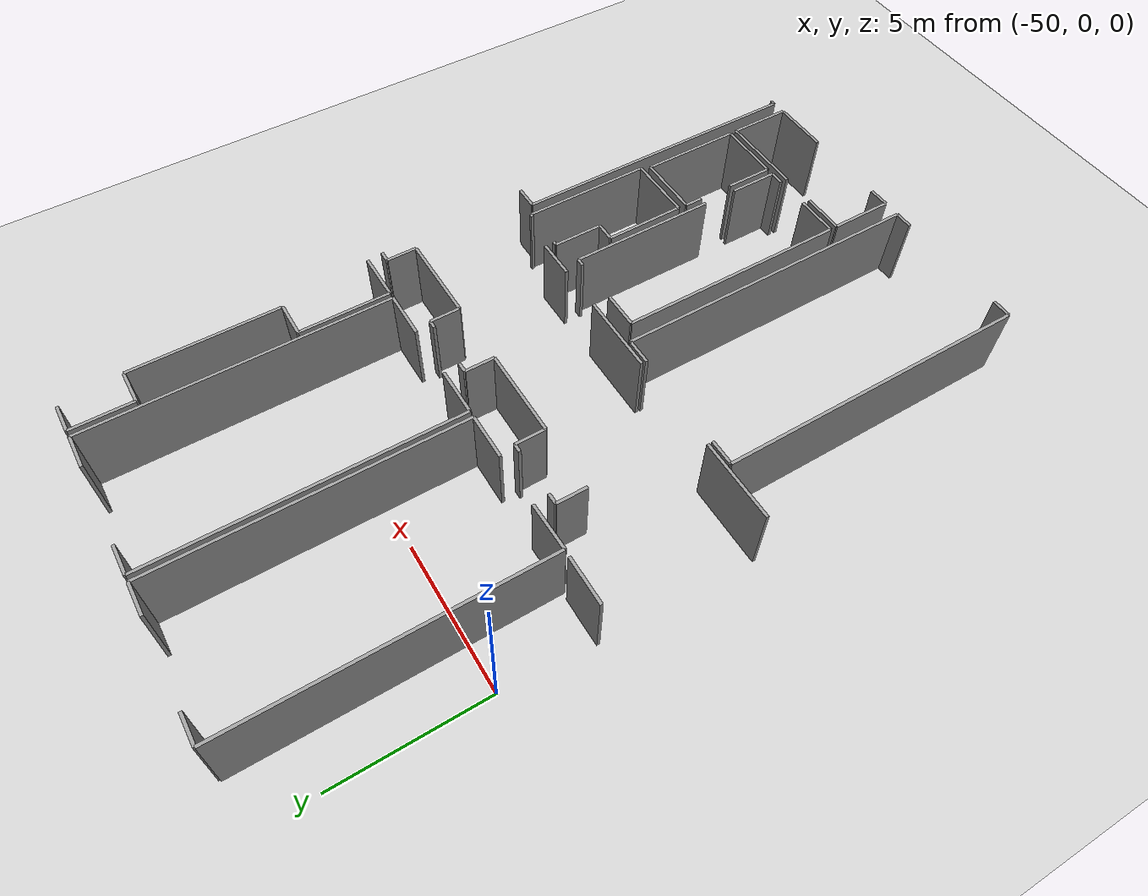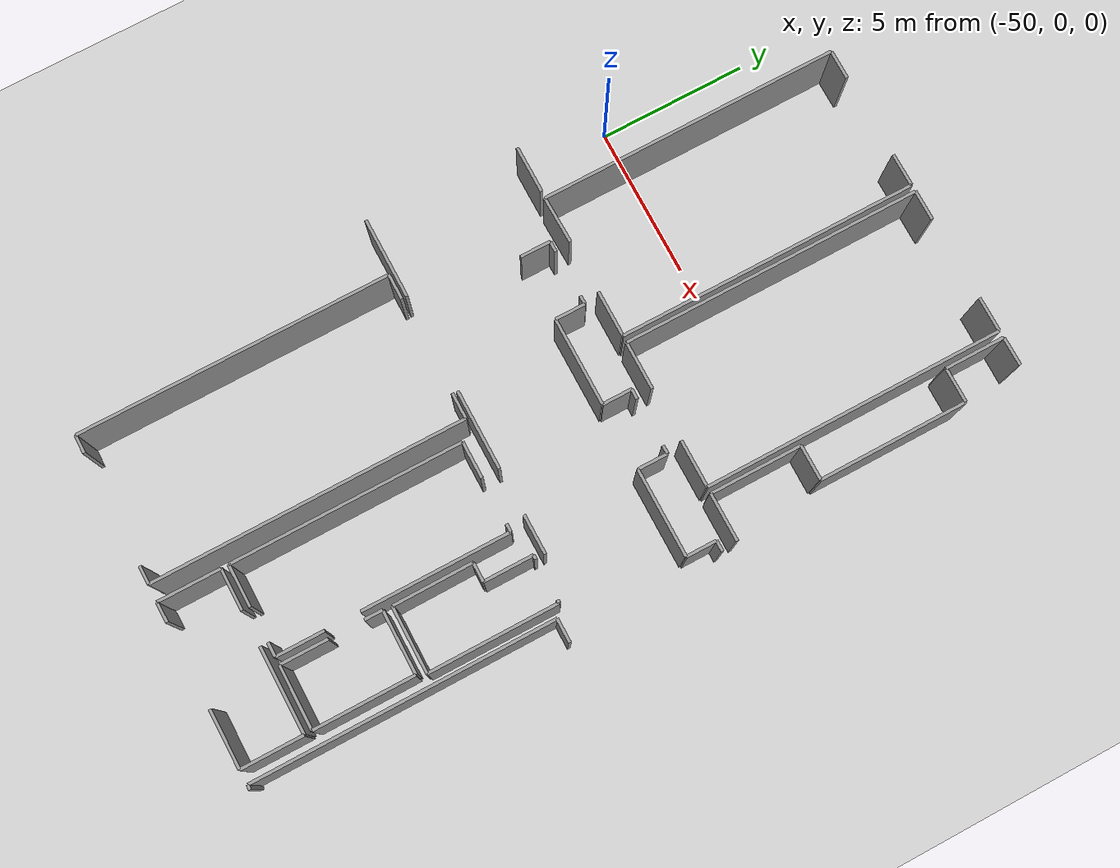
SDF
<sdf version="1.6">
 <world name="default">
  <model name="ground_plane">
   <static>1</static>
   <link name="link">
    <collision name="collision">
     <geometry><plane><normal>0 0 1</normal><size>100 100</size></plane></geometry>
     <surface><friction><ode><mu>100</mu><mu2>50</mu2></ode></friction></surface>
    </collision>
    <visual name="visual">
     <cast_shadows>0</cast_shadows>
     <geometry><plane><normal>0 0 1</normal><size>100 100</size></plane></geometry>
     <material>
      <script><uri>file://media/materials/scripts/gazebo.material</uri><name>Gazebo/Grey</name></script>
     </material>
    </visual>
   </link>
  </model>
  <model name="50055641">
   <static>1</static>
   <link name="Wall_29">
    <collision name="Wall_29_Collision">
     <geometry><box><size>1.01562797547 0.1 2.5</size></box></geometry>
     <pose>0.507813987736 0 1.25 0 0 0</pose>
    </collision>
    <visual name="Wall_29_Visual">
     <pose>0.507813987736 0 1.25 0 0 0</pose>
     <geometry><box><size>1.01562797547 0.1 2.5</size></box></geometry>
     <material>
      <script><uri>file://media/materials/scripts/gazebo.material</uri><name>Gazebo/Grey</name></script>
      <ambient>1 1 1 1</ambient>
     </material>
    </visual>
    <pose>22.1484340286 -23.2658787086 0 0 0 1.57079632679</pose>
   </link>
   <link name="Wall_30">
    <collision name="Wall_30_Collision">
     <geometry><box><size>0.365753024667 0.1 2.5</size></box></geometry>
     <pose>0.182876512334 0 1.25 0 0 0</pose>
    </collision>
    <visual name="Wall_30_Visual">
     <pose>0.182876512334 0 1.25 0 0 0</pose>
     <geometry><box><size>0.365753024667 0.1 2.5</size></box></geometry>
     <material>
      <script><uri>file://media/materials/scripts/gazebo.material</uri><name>Gazebo/Grey</name></script>
      <ambient>1 1 1 1</ambient>
     </material>
    </visual>
    <pose>22.1484340286 -22.2502507332 0 0 0 0.0</pose>
   </link>
   <link name="Wall_31">
    <collision name="Wall_31_Collision">
     <geometry><box><size>0.283868019145 0.1 2.5</size></box></geometry>
     <pose>0.141934009572 0 1.25 0 0 0</pose>
    </collision>
    <visual name="Wall_31_Visual">
     <pose>0.141934009572 0 1.25 0 0 0</pose>
     <geometry><box><size>0.283868019145 0.1 2.5</size></box></geometry>
     <material>
      <script><uri>file://media/materials/scripts/gazebo.material</uri><name>Gazebo/Grey</name></script>
      <ambient>1 1 1 1</ambient>
     </material>
    </visual>
    <pose>24.0752072516 -22.2502507332 0 0 0 0.0</pose>
   </link>
   <link name="Wall_32">
    <collision name="Wall_32_Collision">
     <geometry><box><size>1.00179004431 0.1 2.5</size></box></geometry>
     <pose>0.500895022153 0 1.25 0 0 0</pose>
    </collision>
    <visual name="Wall_32_Visual">
     <pose>0.500895022153 0 1.25 0 0 0</pose>
     <geometry><box><size>1.00179004431 0.1 2.5</size></box></geometry>
     <material>
      <script><uri>file://media/materials/scripts/gazebo.material</uri><name>Gazebo/Grey</name></script>
      <ambient>1 1 1 1</ambient>
     </material>
    </visual>
    <pose>24.3590752707 -22.2502507332 0 0 0 -1.57079632679</pose>
   </link>
   <link name="Wall_33">
    <collision name="Wall_33_Collision">
     <geometry><box><size>2.95496959464 0.1 2.5</size></box></geometry>
     <pose>1.47748479732 0 1.25 0 0 0</pose>
    </collision>
    <visual name="Wall_33_Visual">
     <pose>1.47748479732 0 1.25 0 0 0</pose>
     <geometry><box><size>2.95496959464 0.1 2.5</size></box></geometry>
     <material>
      <script><uri>file://media/materials/scripts/gazebo.material</uri><name>Gazebo/Grey</name></script>
      <ambient>1 1 1 1</ambient>
     </material>
    </visual>
    <pose>24.3590752707 -23.2520407775 0 0 0 0.0</pose>
   </link>
   <link name="Wall_34">
    <collision name="Wall_34_Collision">
     <geometry><box><size>0.984905229215 0.1 2.5</size></box></geometry>
     <pose>0.492452614607 0 1.25 0 0 0</pose>
    </collision>
    <visual name="Wall_34_Visual">
     <pose>0.492452614607 0 1.25 0 0 0</pose>
     <geometry><box><size>0.984905229215 0.1 2.5</size></box></geometry>
     <material>
      <script><uri>file://media/materials/scripts/gazebo.material</uri><name>Gazebo/Grey</name></script>
      <ambient>1 1 1 1</ambient>
     </material>
    </visual>
    <pose>27.3140448654 -23.2520407775 0 0 0 1.57079632679</pose>
   </link>
   <link name="Wall_35">
    <collision name="Wall_35_Collision">
     <geometry><box><size>0.342139674237 0.1 2.5</size></box></geometry>
     <pose>0.171069837119 0 1.25 0 0 0</pose>
    </collision>
    <visual name="Wall_35_Visual">
     <pose>0.171069837119 0 1.25 0 0 0</pose>
     <geometry><box><size>0.342139674237 0.1 2.5</size></box></geometry>
     <material>
      <script><uri>file://media/materials/scripts/gazebo.material</uri><name>Gazebo/Grey</name></script>
      <ambient>1 1 1 1</ambient>
     </material>
    </visual>
    <pose>27.3140448654 -22.2671355482 0 0 0 0.0</pose>
   </link>
   <link name="Wall_36">
    <collision name="Wall_36_Collision">
     <geometry><box><size>0.275996902335 0.1 2.5</size></box></geometry>
     <pose>0.137998451167 0 1.25 0 0 0</pose>
    </collision>
    <visual name="Wall_36_Visual">
     <pose>0.137998451167 0 1.25 0 0 0</pose>
     <geometry><box><size>0.275996902335 0.1 2.5</size></box></geometry>
     <material>
      <script><uri>file://media/materials/scripts/gazebo.material</uri><name>Gazebo/Grey</name></script>
      <ambient>1 1 1 1</ambient>
     </material>
    </visual>
    <pose>29.2467849027 -22.2671355482 0 0 0 0.0</pose>
   </link>
   <link name="Wall_37">
    <collision name="Wall_37_Collision">
     <geometry><box><size>0.99874316038 0.1 2.5</size></box></geometry>
     <pose>0.49937158019 0 1.25 0 0 0</pose>
    </collision>
    <visual name="Wall_37_Visual">
     <pose>0.49937158019 0 1.25 0 0 0</pose>
     <geometry><box><size>0.99874316038 0.1 2.5</size></box></geometry>
     <material>
      <script><uri>file://media/materials/scripts/gazebo.material</uri><name>Gazebo/Grey</name></script>
      <ambient>1 1 1 1</ambient>
     </material>
    </visual>
    <pose>29.522781805 -22.2671355482 0 0 0 -1.57079632679</pose>
   </link>
   <link name="Wall_38">
    <collision name="Wall_38_Collision">
     <geometry><box><size>2.93643438409 0.1 2.5</size></box></geometry>
     <pose>1.46821719204 0 1.25 0 0 0</pose>
    </collision>
    <visual name="Wall_38_Visual">
     <pose>1.46821719204 0 1.25 0 0 0</pose>
     <geometry><box><size>2.93643438409 0.1 2.5</size></box></geometry>
     <material>
      <script><uri>file://media/materials/scripts/gazebo.material</uri><name>Gazebo/Grey</name></script>
      <ambient>1 1 1 1</ambient>
     </material>
    </visual>
    <pose>29.522781805 -23.2658787086 0 0 0 0.0</pose>
   </link>
   <link name="Wall_39">
    <collision name="Wall_39_Collision">
     <geometry><box><size>1.01562797547 0.1 2.5</size></box></geometry>
     <pose>0.507813987736 0 1.25 0 0 0</pose>
    </collision>
    <visual name="Wall_39_Visual">
     <pose>0.507813987736 0 1.25 0 0 0</pose>
     <geometry><box><size>1.01562797547 0.1 2.5</size></box></geometry>
     <material>
      <script><uri>file://media/materials/scripts/gazebo.material</uri><name>Gazebo/Grey</name></script>
      <ambient>1 1 1 1</ambient>
     </material>
    </visual>
    <pose>32.4592161891 -23.2658787086 0 0 0 1.57079632679</pose>
   </link>
   <link name="Wall_40">
    <collision name="Wall_40_Collision">
     <geometry><box><size>0.364356536201 0.1 2.5</size></box></geometry>
     <pose>0.1821782681 0 1.25 0 0 0</pose>
    </collision>
    <visual name="Wall_40_Visual">
     <pose>0.1821782681 0 1.25 0 0 0</pose>
     <geometry><box><size>0.364356536201 0.1 2.5</size></box></geometry>
     <material>
      <script><uri>file://media/materials/scripts/gazebo.material</uri><name>Gazebo/Grey</name></script>
      <ambient>1 1 1 1</ambient>
     </material>
    </visual>
    <pose>32.4592161891 -22.2502507332 0 0 0 0.0</pose>
   </link>
   <link name="Wall_62">
    <collision name="Wall_62_Collision">
     <geometry><box><size>1.31054094885 0.1 2.5</size></box></geometry>
     <pose>0.655270474425 0 1.25 0 0 0</pose>
    </collision>
    <visual name="Wall_62_Visual">
     <pose>0.655270474425 0 1.25 0 0 0</pose>
     <geometry><box><size>1.31054094885 0.1 2.5</size></box></geometry>
     <material>
      <script><uri>file://media/materials/scripts/gazebo.material</uri><name>Gazebo/Grey</name></script>
      <ambient>1 1 1 1</ambient>
     </material>
    </visual>
    <pose>30.4442102858 -26.8581548579 0 0 0 3.14159265359</pose>
   </link>
   <link name="Wall_63">
    <collision name="Wall_63_Collision">
     <geometry><box><size>2.65447066739 0.1 2.5</size></box></geometry>
     <pose>1.3272353337 0 1.25 0 0 0</pose>
    </collision>
    <visual name="Wall_63_Visual">
     <pose>1.3272353337 0 1.25 0 0 0</pose>
     <geometry><box><size>2.65447066739 0.1 2.5</size></box></geometry>
     <material>
      <script><uri>file://media/materials/scripts/gazebo.material</uri><name>Gazebo/Grey</name></script>
      <ambient>1 1 1 1</ambient>
     </material>
    </visual>
    <pose>27.5727760921 -26.8581548579 0 0 0 3.14159265359</pose>
   </link>
   <link name="Wall_64">
    <collision name="Wall_64_Collision">
     <geometry><box><size>2.7041094847 0.1 2.5</size></box></geometry>
     <pose>1.35205474235 0 1.25 0 0 0</pose>
    </collision>
    <visual name="Wall_64_Visual">
     <pose>1.35205474235 0 1.25 0 0 0</pose>
     <geometry><box><size>2.7041094847 0.1 2.5</size></box></geometry>
     <material>
      <script><uri>file://media/materials/scripts/gazebo.material</uri><name>Gazebo/Grey</name></script>
      <ambient>1 1 1 1</ambient>
     </material>
    </visual>
    <pose>21.6201805279 -26.8581548579 0 0 0 3.14159265359</pose>
   </link>
   <link name="Wall_79">
    <collision name="Wall_79_Collision">
     <geometry><box><size>1.56965303609 0.1 2.5</size></box></geometry>
     <pose>0.784826518046 0 1.25 0 0 0</pose>
    </collision>
    <visual name="Wall_79_Visual">
     <pose>0.784826518046 0 1.25 0 0 0</pose>
     <geometry><box><size>1.56965303609 0.1 2.5</size></box></geometry>
     <material>
      <script><uri>file://media/materials/scripts/gazebo.material</uri><name>Gazebo/Grey</name></script>
      <ambient>1 1 1 1</ambient>
     </material>
    </visual>
    <pose>20.619786972 -21.7329152332 0 0 0 3.14159265359</pose>
   </link>
   <link name="Wall_81">
    <collision name="Wall_81_Collision">
     <geometry><box><size>10.0346583047 0.1 2.5</size></box></geometry>
     <pose>5.01732915233 0 1.25 0 0 0</pose>
    </collision>
    <visual name="Wall_81_Visual">
     <pose>5.01732915233 0 1.25 0 0 0</pose>
     <geometry><box><size>10.0346583047 0.1 2.5</size></box></geometry>
     <material>
      <script><uri>file://media/materials/scripts/gazebo.material</uri><name>Gazebo/Grey</name></script>
      <ambient>1 1 1 1</ambient>
     </material>
    </visual>
    <pose>20.8615064302 -21.7495461412 0 0 0 1.57079632679</pose>
   </link>
   <link name="Wall_82">
    <collision name="Wall_82_Collision">
     <geometry><box><size>0.979827089337 0.1 2.5</size></box></geometry>
     <pose>0.489913544669 0 1.25 0 0 0</pose>
    </collision>
    <visual name="Wall_82_Visual">
     <pose>0.489913544669 0 1.25 0 0 0</pose>
     <geometry><box><size>0.979827089337 0.1 2.5</size></box></geometry>
     <material>
      <script><uri>file://media/materials/scripts/gazebo.material</uri><name>Gazebo/Grey</name></script>
      <ambient>1 1 1 1</ambient>
     </material>
    </visual>
    <pose>20.8615064302 -11.7148878366 0 0 0 0.0</pose>
   </link>
   <link name="Wall_83">
    <collision name="Wall_83_Collision">
     <geometry><box><size>1.09776688799 0.1 2.5</size></box></geometry>
     <pose>0.548883443994 0 1.25 0 0 0</pose>
    </collision>
    <visual name="Wall_83_Visual">
     <pose>0.548883443994 0 1.25 0 0 0</pose>
     <geometry><box><size>1.09776688799 0.1 2.5</size></box></geometry>
     <material>
      <script><uri>file://media/materials/scripts/gazebo.material</uri><name>Gazebo/Grey</name></script>
      <ambient>1 1 1 1</ambient>
     </material>
    </visual>
    <pose>24.6623671749 -11.7148878366 0 0 0 0.0</pose>
   </link>
   <link name="Wall_84">
    <collision name="Wall_84_Collision">
     <geometry><box><size>10.0001269535 0.1 2.5</size></box></geometry>
     <pose>5.00006347675 0 1.25 0 0 0</pose>
    </collision>
    <visual name="Wall_84_Visual">
     <pose>5.00006347675 0 1.25 0 0 0</pose>
     <geometry><box><size>10.0001269535 0.1 2.5</size></box></geometry>
     <material>
      <script><uri>file://media/materials/scripts/gazebo.material</uri><name>Gazebo/Grey</name></script>
      <ambient>1 1 1 1</ambient>
     </material>
    </visual>
    <pose>25.7601340629 -11.7148878366 0 0 0 -1.57079632679</pose>
   </link>
   <link name="Wall_85">
    <collision name="Wall_85_Collision">
     <geometry><box><size>1.54223108076 0.1 2.5</size></box></geometry>
     <pose>0.771115540378 0 1.25 0 0 0</pose>
    </collision>
    <visual name="Wall_85_Visual">
     <pose>0.771115540378 0 1.25 0 0 0</pose>
     <geometry><box><size>1.54223108076 0.1 2.5</size></box></geometry>
     <material>
      <script><uri>file://media/materials/scripts/gazebo.material</uri><name>Gazebo/Grey</name></script>
      <ambient>1 1 1 1</ambient>
     </material>
    </visual>
    <pose>25.7601340629 -21.7150147901 0 0 0 3.14159265359</pose>
   </link>
   <link name="Wall_86">
    <collision name="Wall_86_Collision">
     <geometry><box><size>1.57840973855 0.1 2.5</size></box></geometry>
     <pose>0.789204869274 0 1.25 0 0 0</pose>
    </collision>
    <visual name="Wall_86_Visual">
     <pose>0.789204869274 0 1.25 0 0 0</pose>
     <geometry><box><size>1.57840973855 0.1 2.5</size></box></geometry>
     <material>
      <script><uri>file://media/materials/scripts/gazebo.material</uri><name>Gazebo/Grey</name></script>
      <ambient>1 1 1 1</ambient>
     </material>
    </visual>
    <pose>22.4395383971 -21.7150147901 0 0 0 -3.11971360314</pose>
   </link>
   <link name="Wall_87">
    <collision name="Wall_87_Collision">
     <geometry><box><size>1.58234838579 0.1 2.5</size></box></geometry>
     <pose>0.791174192893 0 1.25 0 0 0</pose>
    </collision>
    <visual name="Wall_87_Visual">
     <pose>0.791174192893 0 1.25 0 0 0</pose>
     <geometry><box><size>1.58234838579 0.1 2.5</size></box></geometry>
     <material>
      <script><uri>file://media/materials/scripts/gazebo.material</uri><name>Gazebo/Grey</name></script>
      <ambient>1 1 1 1</ambient>
     </material>
    </visual>
    <pose>30.9487234826 -21.7194581625 0 0 0 3.14159265359</pose>
   </link>
   <link name="Wall_88">
    <collision name="Wall_88_Collision">
     <geometry><box><size>1.6026609453 0.1 2.5</size></box></geometry>
     <pose>0.801330472648 0 1.25 0 0 0</pose>
    </collision>
    <visual name="Wall_88_Visual">
     <pose>0.801330472648 0 1.25 0 0 0</pose>
     <geometry><box><size>1.6026609453 0.1 2.5</size></box></geometry>
     <material>
      <script><uri>file://media/materials/scripts/gazebo.material</uri><name>Gazebo/Grey</name></script>
      <ambient>1 1 1 1</ambient>
     </material>
    </visual>
    <pose>27.5894070002 -21.7194581625 0 0 0 3.14159265359</pose>
   </link>
   <link name="Wall_89">
    <collision name="Wall_89_Collision">
     <geometry><box><size>10.0086328378 0.1 2.5</size></box></geometry>
     <pose>5.0043164189 0 1.25 0 0 0</pose>
    </collision>
    <visual name="Wall_89_Visual">
     <pose>5.0043164189 0 1.25 0 0 0</pose>
     <geometry><box><size>10.0086328378 0.1 2.5</size></box></geometry>
     <material>
      <script><uri>file://media/materials/scripts/gazebo.material</uri><name>Gazebo/Grey</name></script>
      <ambient>1 1 1 1</ambient>
     </material>
    </visual>
    <pose>25.9867460549 -21.7194581625 0 0 0 1.57079632679</pose>
   </link>
   <link name="Wall_90">
    <collision name="Wall_90_Collision">
     <geometry><box><size>1.00851857964 0.1 2.5</size></box></geometry>
     <pose>0.504259289822 0 1.25 0 0 0</pose>
    </collision>
    <visual name="Wall_90_Visual">
     <pose>0.504259289822 0 1.25 0 0 0</pose>
     <geometry><box><size>1.00851857964 0.1 2.5</size></box></geometry>
     <material>
      <script><uri>file://media/materials/scripts/gazebo.material</uri><name>Gazebo/Grey</name></script>
      <ambient>1 1 1 1</ambient>
     </material>
    </visual>
    <pose>25.9867460549 -11.7108253247 0 0 0 0.0</pose>
   </link>
   <link name="Wall_91">
    <collision name="Wall_91_Collision">
     <geometry><box><size>1.14880219376 0.1 2.5</size></box></geometry>
     <pose>0.574401096878 0 1.25 0 0 0</pose>
    </collision>
    <visual name="Wall_91_Visual">
     <pose>0.574401096878 0 1.25 0 0 0</pose>
     <geometry><box><size>1.14880219376 0.1 2.5</size></box></geometry>
     <material>
      <script><uri>file://media/materials/scripts/gazebo.material</uri><name>Gazebo/Grey</name></script>
      <ambient>1 1 1 1</ambient>
     </material>
    </visual>
    <pose>29.7914154045 -11.7108253247 0 0 0 0.0</pose>
   </link>
   <link name="Wall_92">
    <collision name="Wall_92_Collision">
     <geometry><box><size>10.0086364522 0.1 2.5</size></box></geometry>
     <pose>5.00431822609 0 1.25 0 0 0</pose>
    </collision>
    <visual name="Wall_92_Visual">
     <pose>5.00431822609 0 1.25 0 0 0</pose>
     <geometry><box><size>10.0086364522 0.1 2.5</size></box></geometry>
     <material>
      <script><uri>file://media/materials/scripts/gazebo.material</uri><name>Gazebo/Grey</name></script>
      <ambient>1 1 1 1</ambient>
     </material>
    </visual>
    <pose>30.9402175983 -11.7108253247 0 0 0 -1.56994647224</pose>
   </link>
   <link name="Wall_93">
    <collision name="Wall_93_Collision">
     <geometry><box><size>3.05259683378 0.1 2.5</size></box></geometry>
     <pose>1.52629841689 0 1.25 0 0 0</pose>
    </collision>
    <visual name="Wall_93_Visual">
     <pose>1.52629841689 0 1.25 0 0 0</pose>
     <geometry><box><size>3.05259683378 0.1 2.5</size></box></geometry>
     <material>
      <script><uri>file://media/materials/scripts/gazebo.material</uri><name>Gazebo/Grey</name></script>
      <ambient>1 1 1 1</ambient>
     </material>
    </visual>
    <pose>31.1672104508 -21.7236476279 0 0 0 1.57079632679</pose>
   </link>
   <link name="Wall_94">
    <collision name="Wall_94_Collision">
     <geometry><box><size>1.17114600922 0.1 2.5</size></box></geometry>
     <pose>0.585573004608 0 1.25 0 0 0</pose>
    </collision>
    <visual name="Wall_94_Visual">
     <pose>0.585573004608 0 1.25 0 0 0</pose>
     <geometry><box><size>1.17114600922 0.1 2.5</size></box></geometry>
     <material>
      <script><uri>file://media/materials/scripts/gazebo.material</uri><name>Gazebo/Grey</name></script>
      <ambient>1 1 1 1</ambient>
     </material>
    </visual>
    <pose>31.1672104508 -18.6710507941 0 0 0 0.0</pose>
   </link>
   <link name="Wall_95">
    <collision name="Wall_95_Collision">
     <geometry><box><size>4.96832510251 0.1 2.5</size></box></geometry>
     <pose>2.48416255126 0 1.25 0 0 0</pose>
    </collision>
    <visual name="Wall_95_Visual">
     <pose>2.48416255126 0 1.25 0 0 0</pose>
     <geometry><box><size>4.96832510251 0.1 2.5</size></box></geometry>
     <material>
      <script><uri>file://media/materials/scripts/gazebo.material</uri><name>Gazebo/Grey</name></script>
      <ambient>1 1 1 1</ambient>
     </material>
    </visual>
    <pose>32.33835646 -18.6710507941 0 0 0 1.57079632679</pose>
   </link>
   <link name="Wall_96">
    <collision name="Wall_96_Collision">
     <geometry><box><size>1.1594662875 0.1 2.5</size></box></geometry>
     <pose>0.579733143749 0 1.25 0 0 0</pose>
    </collision>
    <visual name="Wall_96_Visual">
     <pose>0.579733143749 0 1.25 0 0 0</pose>
     <geometry><box><size>1.1594662875 0.1 2.5</size></box></geometry>
     <material>
      <script><uri>file://media/materials/scripts/gazebo.material</uri><name>Gazebo/Grey</name></script>
      <ambient>1 1 1 1</ambient>
     </material>
    </visual>
    <pose>32.33835646 -13.7027256916 0 0 0 3.14159265359</pose>
   </link>
   <link name="Wall_97">
    <collision name="Wall_97_Collision">
     <geometry><box><size>2.00345313512 0.1 2.5</size></box></geometry>
     <pose>1.00172656756 0 1.25 0 0 0</pose>
    </collision>
    <visual name="Wall_97_Visual">
     <pose>1.00172656756 0 1.25 0 0 0</pose>
     <geometry><box><size>2.00345313512 0.1 2.5</size></box></geometry>
     <material>
      <script><uri>file://media/materials/scripts/gazebo.material</uri><name>Gazebo/Grey</name></script>
      <ambient>1 1 1 1</ambient>
     </material>
    </visual>
    <pose>31.1788901725 -13.7027256916 0 0 0 1.57079632679</pose>
   </link>
   <link name="Wall_98">
    <collision name="Wall_98_Collision">
     <geometry><box><size>0.959895390319 0.1 2.5</size></box></geometry>
     <pose>0.479947695159 0 1.25 0 0 0</pose>
    </collision>
    <visual name="Wall_98_Visual">
     <pose>0.479947695159 0 1.25 0 0 0</pose>
     <geometry><box><size>0.959895390319 0.1 2.5</size></box></geometry>
     <material>
      <script><uri>file://media/materials/scripts/gazebo.material</uri><name>Gazebo/Grey</name></script>
      <ambient>1 1 1 1</ambient>
     </material>
    </visual>
    <pose>31.1788901725 -11.6992725565 0 0 0 0.0</pose>
   </link>
   <link name="Wall_110">
    <collision name="Wall_110_Collision">
     <geometry><box><size>1.59618947236 0.1 2.5</size></box></geometry>
     <pose>0.798094736179 0 1.25 0 0 0</pose>
    </collision>
    <visual name="Wall_110_Visual">
     <pose>0.798094736179 0 1.25 0 0 0</pose>
     <geometry><box><size>1.59618947236 0.1 2.5</size></box></geometry>
     <material>
      <script><uri>file://media/materials/scripts/gazebo.material</uri><name>Gazebo/Grey</name></script>
      <ambient>1 1 1 1</ambient>
     </material>
    </visual>
    <pose>32.7633967678 -21.7204737905 0 0 0 -3.1396042684</pose>
   </link>
   <link name="Wall_141">
    <collision name="Wall_141_Collision">
     <geometry><box><size>9.99860351153 0.1 2.5</size></box></geometry>
     <pose>4.99930175577 0 1.25 0 0 0</pose>
    </collision>
    <visual name="Wall_141_Visual">
     <pose>4.99930175577 0 1.25 0 0 0</pose>
     <geometry><box><size>9.99860351153 0.1 2.5</size></box></geometry>
     <material>
      <script><uri>file://media/materials/scripts/gazebo.material</uri><name>Gazebo/Grey</name></script>
      <ambient>1 1 1 1</ambient>
     </material>
    </visual>
    <pose>32.2657390598 -37.4378245249 0 0 0 1.57079632679</pose>
   </link>
   <link name="Wall_142">
    <collision name="Wall_142_Collision">
     <geometry><box><size>0.780764006145 0.1 2.5</size></box></geometry>
     <pose>0.390382003072 0 1.25 0 0 0</pose>
    </collision>
    <visual name="Wall_142_Visual">
     <pose>0.390382003072 0 1.25 0 0 0</pose>
     <geometry><box><size>0.780764006145 0.1 2.5</size></box></geometry>
     <material>
      <script><uri>file://media/materials/scripts/gazebo.material</uri><name>Gazebo/Grey</name></script>
      <ambient>1 1 1 1</ambient>
     </material>
    </visual>
    <pose>32.2657390598 -27.4392210133 0 0 0 0.0</pose>
   </link>
   <link name="Wall_146">
    <collision name="Wall_146_Collision">
     <geometry><box><size>0.162753095704 0.1 2.5</size></box></geometry>
     <pose>0.0813765478522 0 1.25 0 0 0</pose>
    </collision>
    <visual name="Wall_146_Visual">
     <pose>0.0813765478522 0 1.25 0 0 0</pose>
     <geometry><box><size>0.162753095704 0.1 2.5</size></box></geometry>
     <material>
      <script><uri>file://media/materials/scripts/gazebo.material</uri><name>Gazebo/Grey</name></script>
      <ambient>1 1 1 1</ambient>
     </material>
    </visual>
    <pose>32.4278586754 -37.45217027 0 0 0 3.05333389172</pose>
   </link>
   <link name="Wall_147">
    <collision name="Wall_147_Collision">
     <geometry><box><size>2.20657873021 0.1 2.5</size></box></geometry>
     <pose>1.10328936511 0 1.25 0 0 0</pose>
    </collision>
    <visual name="Wall_147_Visual">
     <pose>1.10328936511 0 1.25 0 0 0</pose>
     <geometry><box><size>2.20657873021 0.1 2.5</size></box></geometry>
     <material>
      <script><uri>file://media/materials/scripts/gazebo.material</uri><name>Gazebo/Grey</name></script>
      <ambient>1 1 1 1</ambient>
     </material>
    </visual>
    <pose>29.6857900951 -31.4895453795 0 0 0 0.0</pose>
   </link>
   <link name="Wall_148">
    <collision name="Wall_148_Collision">
     <geometry><box><size>4.3188310122 0.1 2.5</size></box></geometry>
     <pose>2.1594155061 0 1.25 0 0 0</pose>
    </collision>
    <visual name="Wall_148_Visual">
     <pose>2.1594155061 0 1.25 0 0 0</pose>
     <geometry><box><size>4.3188310122 0.1 2.5</size></box></geometry>
     <material>
      <script><uri>file://media/materials/scripts/gazebo.material</uri><name>Gazebo/Grey</name></script>
      <ambient>1 1 1 1</ambient>
     </material>
    </visual>
    <pose>31.8923688253 -31.4895453795 0 0 0 1.57079632679</pose>
   </link>
   <link name="Wall_149">
    <collision name="Wall_149_Collision">
     <geometry><box><size>0.101689751044 0.1 2.5</size></box></geometry>
     <pose>0.0508448755221 0 1.25 0 0 0</pose>
    </collision>
    <visual name="Wall_149_Visual">
     <pose>0.0508448755221 0 1.25 0 0 0</pose>
     <geometry><box><size>0.101689751044 0.1 2.5</size></box></geometry>
     <material>
      <script><uri>file://media/materials/scripts/gazebo.material</uri><name>Gazebo/Grey</name></script>
      <ambient>1 1 1 1</ambient>
     </material>
    </visual>
    <pose>31.8923688253 -27.1707143673 0 0 0 3.14159265359</pose>
   </link>
   <link name="Wall_150">
    <collision name="Wall_150_Collision">
     <geometry><box><size>0.141934009572 0.1 2.5</size></box></geometry>
     <pose>0.0709670047861 0 1.25 0 0 0</pose>
    </collision>
    <visual name="Wall_150_Visual">
     <pose>0.0709670047861 0 1.25 0 0 0</pose>
     <geometry><box><size>0.141934009572 0.1 2.5</size></box></geometry>
     <material>
      <script><uri>file://media/materials/scripts/gazebo.material</uri><name>Gazebo/Grey</name></script>
      <ambient>1 1 1 1</ambient>
     </material>
    </visual>
    <pose>30.4525892166 -27.1707143673 0 0 0 3.14159265359</pose>
   </link>
   <link name="Wall_151">
    <collision name="Wall_151_Collision">
     <geometry><box><size>1.65737790247 0.1 2.5</size></box></geometry>
     <pose>0.828688951237 0 1.25 0 0 0</pose>
    </collision>
    <visual name="Wall_151_Visual">
     <pose>0.828688951237 0 1.25 0 0 0</pose>
     <geometry><box><size>1.65737790247 0.1 2.5</size></box></geometry>
     <material>
      <script><uri>file://media/materials/scripts/gazebo.material</uri><name>Gazebo/Grey</name></script>
      <ambient>1 1 1 1</ambient>
     </material>
    </visual>
    <pose>30.310655207 -27.1707143673 0 0 0 -1.57079632679</pose>
   </link>
   <link name="Wall_152">
    <collision name="Wall_152_Collision">
     <geometry><box><size>0.64263860148 0.1 2.5</size></box></geometry>
     <pose>0.32131930074 0 1.25 0 0 0</pose>
    </collision>
    <visual name="Wall_152_Visual">
     <pose>0.32131930074 0 1.25 0 0 0</pose>
     <geometry><box><size>0.64263860148 0.1 2.5</size></box></geometry>
     <material>
      <script><uri>file://media/materials/scripts/gazebo.material</uri><name>Gazebo/Grey</name></script>
      <ambient>1 1 1 1</ambient>
     </material>
    </visual>
    <pose>30.310655207 -28.8280922698 0 0 0 3.14159265359</pose>
   </link>
   <link name="Wall_153">
    <collision name="Wall_153_Collision">
     <geometry><box><size>2.66151245577 0.1 2.5</size></box></geometry>
     <pose>1.33075622788 0 1.25 0 0 0</pose>
    </collision>
    <visual name="Wall_153_Visual">
     <pose>1.33075622788 0 1.25 0 0 0</pose>
     <geometry><box><size>2.66151245577 0.1 2.5</size></box></geometry>
     <material>
      <script><uri>file://media/materials/scripts/gazebo.material</uri><name>Gazebo/Grey</name></script>
      <ambient>1 1 1 1</ambient>
     </material>
    </visual>
    <pose>29.6680166055 -28.8280922698 0 0 0 -1.5641183112</pose>
   </link>
   <link name="Wall_154">
    <collision name="Wall_154_Collision">
     <geometry><box><size>7.70442686844 0.1 2.5</size></box></geometry>
     <pose>3.85221343422 0 1.25 0 0 0</pose>
    </collision>
    <visual name="Wall_154_Visual">
     <pose>3.85221343422 0 1.25 0 0 0</pose>
     <geometry><box><size>7.70442686844 0.1 2.5</size></box></geometry>
     <material>
      <script><uri>file://media/materials/scripts/gazebo.material</uri><name>Gazebo/Grey</name></script>
      <ambient>1 1 1 1</ambient>
     </material>
    </visual>
    <pose>26.354403382 -35.1442826493 0 0 0 1.57079632679</pose>
   </link>
   <link name="Wall_155">
    <collision name="Wall_155_Collision">
     <geometry><box><size>1.22789422235 0.1 2.5</size></box></geometry>
     <pose>0.613947111173 0 1.25 0 0 0</pose>
    </collision>
    <visual name="Wall_155_Visual">
     <pose>0.613947111173 0 1.25 0 0 0</pose>
     <geometry><box><size>1.22789422235 0.1 2.5</size></box></geometry>
     <material>
      <script><uri>file://media/materials/scripts/gazebo.material</uri><name>Gazebo/Grey</name></script>
      <ambient>1 1 1 1</ambient>
     </material>
    </visual>
    <pose>26.354403382 -27.4398557808 0 0 0 0.0</pose>
   </link>
   <link name="Wall_156">
    <collision name="Wall_156_Collision">
     <geometry><box><size>0.263428506138 0.1 2.5</size></box></geometry>
     <pose>0.131714253069 0 1.25 0 0 0</pose>
    </collision>
    <visual name="Wall_156_Visual">
     <pose>0.131714253069 0 1.25 0 0 0</pose>
     <geometry><box><size>0.263428506138 0.1 2.5</size></box></geometry>
     <material>
      <script><uri>file://media/materials/scripts/gazebo.material</uri><name>Gazebo/Grey</name></script>
      <ambient>1 1 1 1</ambient>
     </material>
    </visual>
    <pose>29.130114639 -27.4398557808 0 0 0 0.0</pose>
   </link>
   <link name="Wall_157">
    <collision name="Wall_157_Collision">
     <geometry><box><size>4.9316355419 0.1 2.5</size></box></geometry>
     <pose>2.46581777095 0 1.25 0 0 0</pose>
    </collision>
    <visual name="Wall_157_Visual">
     <pose>2.46581777095 0 1.25 0 0 0</pose>
     <geometry><box><size>4.9316355419 0.1 2.5</size></box></geometry>
     <material>
      <script><uri>file://media/materials/scripts/gazebo.material</uri><name>Gazebo/Grey</name></script>
      <ambient>1 1 1 1</ambient>
     </material>
    </visual>
    <pose>29.3935431451 -27.4398557808 0 0 0 -1.57079632679</pose>
   </link>
   <link name="Wall_158">
    <collision name="Wall_158_Collision">
     <geometry><box><size>1.60304180579 0.1 2.5</size></box></geometry>
     <pose>0.801520902893 0 1.25 0 0 0</pose>
    </collision>
    <visual name="Wall_158_Visual">
     <pose>0.801520902893 0 1.25 0 0 0</pose>
     <geometry><box><size>1.60304180579 0.1 2.5</size></box></geometry>
     <material>
      <script><uri>file://media/materials/scripts/gazebo.material</uri><name>Gazebo/Grey</name></script>
      <ambient>1 1 1 1</ambient>
     </material>
    </visual>
    <pose>29.3935431451 -33.5373052851 0 0 0 -1.57079632679</pose>
   </link>
   <link name="Wall_159">
    <collision name="Wall_159_Collision">
     <geometry><box><size>0.466808008227 0.1 2.5</size></box></geometry>
     <pose>0.233404004113 0 1.25 0 0 0</pose>
    </collision>
    <visual name="Wall_159_Visual">
     <pose>0.233404004113 0 1.25 0 0 0</pose>
     <geometry><box><size>0.466808008227 0.1 2.5</size></box></geometry>
     <material>
      <script><uri>file://media/materials/scripts/gazebo.material</uri><name>Gazebo/Grey</name></script>
      <ambient>1 1 1 1</ambient>
     </material>
    </visual>
    <pose>29.3935431451 -35.1403470909 0 0 0 3.14159265359</pose>
   </link>
   <link name="Wall_160">
    <collision name="Wall_160_Collision">
     <geometry><box><size>1.41452133771 0.1 2.5</size></box></geometry>
     <pose>0.707260668856 0 1.25 0 0 0</pose>
    </collision>
    <visual name="Wall_160_Visual">
     <pose>0.707260668856 0 1.25 0 0 0</pose>
     <geometry><box><size>1.41452133771 0.1 2.5</size></box></geometry>
     <material>
      <script><uri>file://media/materials/scripts/gazebo.material</uri><name>Gazebo/Grey</name></script>
      <ambient>1 1 1 1</ambient>
     </material>
    </visual>
    <pose>27.7689192449 -35.1403470909 0 0 0 -3.13881039547</pose>
   </link>
   <link name="Wall_161">
    <collision name="Wall_161_Collision">
     <geometry><box><size>1.58234838579 0.1 2.5</size></box></geometry>
     <pose>0.791174192893 0 1.25 0 0 0</pose>
    </collision>
    <visual name="Wall_161_Visual">
     <pose>0.791174192893 0 1.25 0 0 0</pose>
     <geometry><box><size>1.58234838579 0.1 2.5</size></box></geometry>
     <material>
      <script><uri>file://media/materials/scripts/gazebo.material</uri><name>Gazebo/Grey</name></script>
      <ambient>1 1 1 1</ambient>
     </material>
    </visual>
    <pose>29.6567177443 -35.1333646485 0 0 0 1.57079632679</pose>
   </link>
   <link name="Wall_162">
    <collision name="Wall_162_Collision">
     <geometry><box><size>0.59833183105 0.1 2.5</size></box></geometry>
     <pose>0.299165915525 0 1.25 0 0 0</pose>
    </collision>
    <visual name="Wall_162_Visual">
     <pose>0.299165915525 0 1.25 0 0 0</pose>
     <geometry><box><size>0.59833183105 0.1 2.5</size></box></geometry>
     <material>
      <script><uri>file://media/materials/scripts/gazebo.material</uri><name>Gazebo/Grey</name></script>
      <ambient>1 1 1 1</ambient>
     </material>
    </visual>
    <pose>29.6567177443 -32.3848214399 0 0 0 1.57079632679</pose>
   </link>
   <link name="Wall_163">
    <collision name="Wall_163_Collision">
     <geometry><box><size>2.11339486346 0.1 2.5</size></box></geometry>
     <pose>1.05669743173 0 1.25 0 0 0</pose>
    </collision>
    <visual name="Wall_163_Visual">
     <pose>1.05669743173 0 1.25 0 0 0</pose>
     <geometry><box><size>2.11339486346 0.1 2.5</size></box></geometry>
     <material>
      <script><uri>file://media/materials/scripts/gazebo.material</uri><name>Gazebo/Grey</name></script>
      <ambient>1 1 1 1</ambient>
     </material>
    </visual>
    <pose>29.6567177443 -31.7864896089 0 0 0 0.0</pose>
   </link>
   <link name="Wall_164">
    <collision name="Wall_164_Collision">
     <geometry><box><size>3.36134773832 0.1 2.5</size></box></geometry>
     <pose>1.68067386916 0 1.25 0 0 0</pose>
    </collision>
    <visual name="Wall_164_Visual">
     <pose>1.68067386916 0 1.25 0 0 0</pose>
     <geometry><box><size>3.36134773832 0.1 2.5</size></box></geometry>
     <material>
      <script><uri>file://media/materials/scripts/gazebo.material</uri><name>Gazebo/Grey</name></script>
      <ambient>1 1 1 1</ambient>
     </material>
    </visual>
    <pose>31.7701126078 -31.7864896089 0 0 0 -1.57079632679</pose>
   </link>
   <link name="Wall_165">
    <collision name="Wall_165_Collision">
     <geometry><box><size>2.11344441798 0.1 2.5</size></box></geometry>
     <pose>1.05672220899 0 1.25 0 0 0</pose>
    </collision>
    <visual name="Wall_165_Visual">
     <pose>1.05672220899 0 1.25 0 0 0</pose>
     <geometry><box><size>2.11344441798 0.1 2.5</size></box></geometry>
     <material>
      <script><uri>file://media/materials/scripts/gazebo.material</uri><name>Gazebo/Grey</name></script>
      <ambient>1 1 1 1</ambient>
     </material>
    </visual>
    <pose>31.7701126078 -35.1478373472 0 0 0 3.1347446799</pose>
   </link>
   <link name="Wall_166">
    <collision name="Wall_166_Collision">
     <geometry><box><size>2.07657834935 0.1 2.5</size></box></geometry>
     <pose>1.03828917468 0 1.25 0 0 0</pose>
    </collision>
    <visual name="Wall_166_Visual">
     <pose>1.03828917468 0 1.25 0 0 0</pose>
     <geometry><box><size>2.07657834935 0.1 2.5</size></box></geometry>
     <material>
      <script><uri>file://media/materials/scripts/gazebo.material</uri><name>Gazebo/Grey</name></script>
      <ambient>1 1 1 1</ambient>
     </material>
    </visual>
    <pose>26.3578311265 -37.4693089921 0 0 0 1.57079632679</pose>
   </link>
   <link name="Wall_167">
    <collision name="Wall_167_Collision">
     <geometry><box><size>1.38861734946 0.1 2.5</size></box></geometry>
     <pose>0.694308674732 0 1.25 0 0 0</pose>
    </collision>
    <visual name="Wall_167_Visual">
     <pose>0.694308674732 0 1.25 0 0 0</pose>
     <geometry><box><size>1.38861734946 0.1 2.5</size></box></geometry>
     <material>
      <script><uri>file://media/materials/scripts/gazebo.material</uri><name>Gazebo/Grey</name></script>
      <ambient>1 1 1 1</ambient>
     </material>
    </visual>
    <pose>26.3578311265 -35.3927306428 0 0 0 0.0</pose>
   </link>
   <link name="Wall_168">
    <collision name="Wall_168_Collision">
     <geometry><box><size>2.8654673793 0.1 2.5</size></box></geometry>
     <pose>1.43273368965 0 1.25 0 0 0</pose>
    </collision>
    <visual name="Wall_168_Visual">
     <pose>1.43273368965 0 1.25 0 0 0</pose>
     <geometry><box><size>2.8654673793 0.1 2.5</size></box></geometry>
     <material>
      <script><uri>file://media/materials/scripts/gazebo.material</uri><name>Gazebo/Grey</name></script>
      <ambient>1 1 1 1</ambient>
     </material>
    </visual>
    <pose>28.9141667407 -35.3927306428 0 0 0 0.0</pose>
   </link>
   <link name="Wall_169">
    <collision name="Wall_169_Collision">
     <geometry><box><size>2.06667597659 0.1 2.5</size></box></geometry>
     <pose>1.03333798829 0 1.25 0 0 0</pose>
    </collision>
    <visual name="Wall_169_Visual">
     <pose>1.03333798829 0 1.25 0 0 0</pose>
     <geometry><box><size>2.06667597659 0.1 2.5</size></box></geometry>
     <material>
      <script><uri>file://media/materials/scripts/gazebo.material</uri><name>Gazebo/Grey</name></script>
      <ambient>1 1 1 1</ambient>
     </material>
    </visual>
    <pose>31.77963412 -35.3927306428 0 0 0 -1.57079632679</pose>
   </link>
   <link name="Wall_170">
    <collision name="Wall_170_Collision">
     <geometry><box><size>1.93413652579 0.1 2.5</size></box></geometry>
     <pose>0.967068262895 0 1.25 0 0 0</pose>
    </collision>
    <visual name="Wall_170_Visual">
     <pose>0.967068262895 0 1.25 0 0 0</pose>
     <geometry><box><size>1.93413652579 0.1 2.5</size></box></geometry>
     <material>
      <script><uri>file://media/materials/scripts/gazebo.material</uri><name>Gazebo/Grey</name></script>
      <ambient>1 1 1 1</ambient>
     </material>
    </visual>
    <pose>31.77963412 -37.4594066194 0 0 0 3.14159265359</pose>
   </link>
   <link name="Wall_171">
    <collision name="Wall_171_Collision">
     <geometry><box><size>0.671276180001 0.1 2.5</size></box></geometry>
     <pose>0.335638090001 0 1.25 0 0 0</pose>
    </collision>
    <visual name="Wall_171_Visual">
     <pose>0.335638090001 0 1.25 0 0 0</pose>
     <geometry><box><size>0.671276180001 0.1 2.5</size></box></geometry>
     <material>
      <script><uri>file://media/materials/scripts/gazebo.material</uri><name>Gazebo/Grey</name></script>
      <ambient>1 1 1 1</ambient>
     </material>
    </visual>
    <pose>27.0290342647 -37.4594066194 0 0 0 -3.12684055567</pose>
   </link>
   <link name="Wall_172">
    <collision name="Wall_172_Collision">
     <geometry><box><size>10.4171691909 0.1 2.5</size></box></geometry>
     <pose>5.20858459546 0 1.25 0 0 0</pose>
    </collision>
    <visual name="Wall_172_Visual">
     <pose>5.20858459546 0 1.25 0 0 0</pose>
     <geometry><box><size>10.4171691909 0.1 2.5</size></box></geometry>
     <material>
      <script><uri>file://media/materials/scripts/gazebo.material</uri><name>Gazebo/Grey</name></script>
      <ambient>1 1 1 1</ambient>
     </material>
    </visual>
    <pose>20.7695920984 -37.4426487578 0 0 0 1.57079632679</pose>
   </link>
   <link name="Wall_173">
    <collision name="Wall_173_Collision">
     <geometry><box><size>0.851857964428 0.1 2.5</size></box></geometry>
     <pose>0.425928982214 0 1.25 0 0 0</pose>
    </collision>
    <visual name="Wall_173_Visual">
     <pose>0.425928982214 0 1.25 0 0 0</pose>
     <geometry><box><size>0.851857964428 0.1 2.5</size></box></geometry>
     <material>
      <script><uri>file://media/materials/scripts/gazebo.material</uri><name>Gazebo/Grey</name></script>
      <ambient>1 1 1 1</ambient>
     </material>
    </visual>
    <pose>20.7695920984 -27.0254795668 0 0 0 0.0</pose>
   </link>
   <link name="Wall_174">
    <collision name="Wall_174_Collision">
     <geometry><box><size>0.871027942465 0.1 2.5</size></box></geometry>
     <pose>0.435513971232 0 1.25 0 0 0</pose>
    </collision>
    <visual name="Wall_174_Visual">
     <pose>0.435513971232 0 1.25 0 0 0</pose>
     <geometry><box><size>0.871027942465 0.1 2.5</size></box></geometry>
     <material>
      <script><uri>file://media/materials/scripts/gazebo.material</uri><name>Gazebo/Grey</name></script>
      <ambient>1 1 1 1</ambient>
     </material>
    </visual>
    <pose>24.9023092841 -27.0254795668 0 0 0 0.0</pose>
   </link>
   <link name="Wall_175">
    <collision name="Wall_175_Collision">
     <geometry><box><size>10.4249133542 0.1 2.5</size></box></geometry>
     <pose>5.21245667712 0 1.25 0 0 0</pose>
    </collision>
    <visual name="Wall_175_Visual">
     <pose>5.21245667712 0 1.25 0 0 0</pose>
     <geometry><box><size>10.4249133542 0.1 2.5</size></box></geometry>
     <material>
      <script><uri>file://media/materials/scripts/gazebo.material</uri><name>Gazebo/Grey</name></script>
      <ambient>1 1 1 1</ambient>
     </material>
    </visual>
    <pose>25.7733372266 -27.0254795668 0 0 0 -1.57079632679</pose>
   </link>
   <link name="Wall_176">
    <collision name="Wall_176_Collision">
     <geometry><box><size>0.602140435958 0.1 2.5</size></box></geometry>
     <pose>0.301070217979 0 1.25 0 0 0</pose>
    </collision>
    <visual name="Wall_176_Visual">
     <pose>0.301070217979 0 1.25 0 0 0</pose>
     <geometry><box><size>0.602140435958 0.1 2.5</size></box></geometry>
     <material>
      <script><uri>file://media/materials/scripts/gazebo.material</uri><name>Gazebo/Grey</name></script>
      <ambient>1 1 1 1</ambient>
     </material>
    </visual>
    <pose>25.7733372266 -37.4503929211 0 0 0 3.14159265359</pose>
   </link>
   <link name="Wall_177">
    <collision name="Wall_177_Collision">
     <geometry><box><size>0.608283501955 0.1 2.5</size></box></geometry>
     <pose>0.304141750978 0 1.25 0 0 0</pose>
    </collision>
    <visual name="Wall_177_Visual">
     <pose>0.304141750978 0 1.25 0 0 0</pose>
     <geometry><box><size>0.608283501955 0.1 2.5</size></box></geometry>
     <material>
      <script><uri>file://media/materials/scripts/gazebo.material</uri><name>Gazebo/Grey</name></script>
      <ambient>1 1 1 1</ambient>
     </material>
    </visual>
    <pose>21.3778263022 -37.4503929211 0 0 0 3.1288611353</pose>
   </link>
   <pose>-69.25 18.7344164583 0 0 0 0</pose>
  </model>
 </world>
</sdf>
